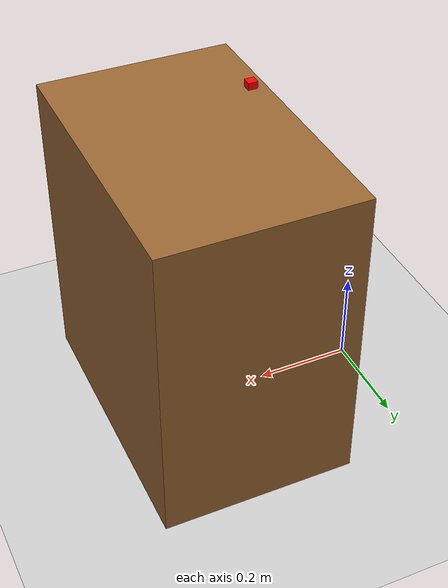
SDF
<?xml version="1.0" ?>
<sdf version="1.7">
  <world name="custom_world">

    <include>
      <uri>model://ground_plane</uri>
    </include>

    <plugin name="contact_bridge_plugin" filename="libcontact_bridge_plugin.so">
      <ros>
        <namespace>/</namespace>
      </ros>
      <update_rate>100.0</update_rate>
    </plugin>

    <plugin name="set_entity_state_plugin" filename="libgazebo_ros_state.so">
      <ros>
        <namespace>/</namespace>
      </ros>
    </plugin>

    <plugin name="reset_joints_plugin" filename="libreset_joints_plugin.so">
      <ros>
        <namespace>/</namespace>
      </ros>
    </plugin>

    <gui>
      <camera name="gzclient_camera">
        <pose>2.112227 -0.721824 1.194857 0 0.295601 2.816199</pose>
      </camera>
    </gui>

    <scene>
      <shadows>0</shadows>
      <grid>true</grid>
      <origin_visual>false</origin_visual>
    </scene>

    <light name="sun" type="directional">
      <cast_shadows>0</cast_shadows>
      <pose>0 0 10 0 -0 0</pose>
      <diffuse>0.8 0.8 0.8 1</diffuse>
      <specular>0.2 0.2 0.2 1</specular>
      <attenuation>
        <range>50</range>
        <constant>0.9</constant>
        <linear>0.01</linear>
        <quadratic>0.001</quadratic>
      </attenuation>
      <direction>-0.5 0.5 -1</direction>
    </light>

    <physics type="ode">
      <gravity>0 0 -9.81</gravity>
      <max_step_size>0.001</max_step_size>
      <real_time_factor>1</real_time_factor>
      <real_time_update_rate>500</real_time_update_rate>
    </physics>

    <model name="table">
      <static>true</static>
      <pose>0.35 0 0.3 0 0 0</pose>
      <link name="table_link">
        <collision name="collision">
          <geometry>
            <box>
              <size>0.4 0.6 0.7</size>
            </box>
          </geometry>
        </collision>

        <visual name="visual">
          <geometry>
            <box>
              <size>0.4 0.6 0.7</size>
            </box>
          </geometry>

          <material>
            <ambient>0.6 0.4 0.2 1</ambient>
            <diffuse>0.6 0.4 0.2 1</diffuse>
          </material>
        </visual>
      </link>
    </model>

    <model name="red_cube">
      <static>false</static>
      <pose>0.18 -0.12 0.64 0 0 0</pose>

      <link name="cube_link">
        <collision name="collision">
          <geometry>
            <box>
              <size>0.02 0.02 0.05</size>
            </box>
          </geometry>
        </collision>

        <visual name="visual">
          <geometry>
            <box>
              <size>0.02 0.02 0.05</size>
            </box>
          </geometry>

          <material>
            <ambient>1 0 0 1</ambient>
            <diffuse>1 0 0 1</diffuse>
          </material>
        </visual>
      </link>
    </model>

  </world>
</sdf>
